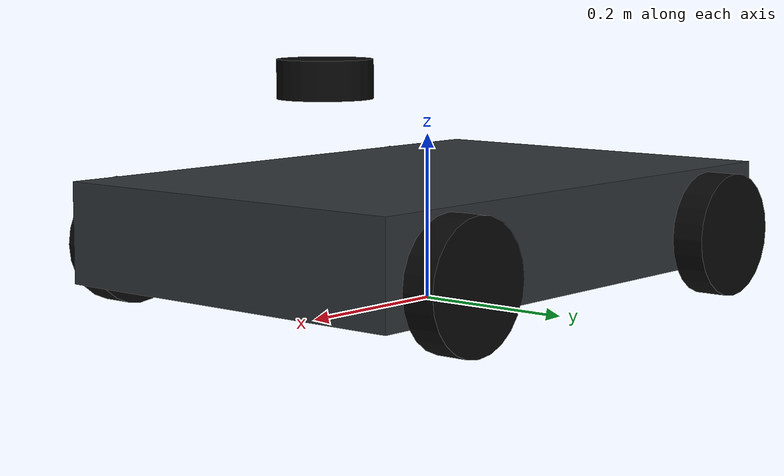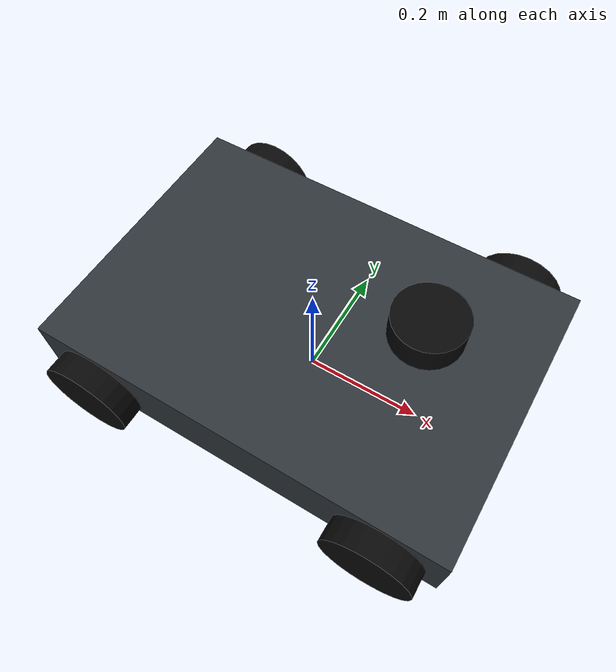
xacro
<?xml version="1.0"?>
<robot xmlns:xacro="http://www.ros.org/wiki/xacro" name="sih26112_amr">

  <!-- Canonical simulation dimensions. Freeze these with CAD before final hardware. -->
  <xacro:property name="base_length" value="0.70"/>
  <xacro:property name="base_width" value="0.48"/>
  <xacro:property name="base_height" value="0.12"/>
  <xacro:property name="wheel_radius" value="0.075"/>
  <xacro:property name="wheel_width" value="0.040"/>
  <xacro:property name="wheelbase" value="0.50"/>
  <xacro:property name="track_width" value="0.52"/>
  <xacro:property name="base_mass" value="18.0"/>
  <xacro:property name="wheel_mass" value="1.0"/>

  <material name="dark_grey"><color rgba="0.18 0.20 0.22 1.0"/></material>
  <material name="sensor_black"><color rgba="0.03 0.03 0.03 1.0"/></material>

  <link name="base_footprint"/>

  <link name="base_link">
    <visual>
      <geometry><box size="${base_length} ${base_width} ${base_height}"/></geometry>
      <material name="dark_grey"/>
    </visual>
    <collision><geometry><box size="${base_length} ${base_width} ${base_height}"/></geometry></collision>
    <inertial>
      <mass value="${base_mass}"/>
      <inertia ixx="${base_mass * (base_width*base_width + base_height*base_height) / 12.0}" ixy="0" ixz="0" iyy="${base_mass * (base_length*base_length + base_height*base_height) / 12.0}" iyz="0" izz="${base_mass * (base_length*base_length + base_width*base_width) / 12.0}"/>
    </inertial>
  </link>

  <joint name="base_footprint_joint" type="fixed">
    <parent link="base_footprint"/>
    <child link="base_link"/>
    <origin xyz="0 0 ${wheel_radius + 0.02}" rpy="0 0 0"/>
  </joint>

  <xacro:macro name="wheel" params="name x y">
    <link name="${name}_link">
      <visual>
        <origin rpy="${pi/2} 0 0"/>
        <geometry><cylinder radius="${wheel_radius}" length="${wheel_width}"/></geometry>
        <material name="sensor_black"/>
      </visual>
      <collision>
        <origin rpy="${pi/2} 0 0"/>
        <geometry><cylinder radius="${wheel_radius}" length="${wheel_width}"/></geometry>
      </collision>
      <inertial>
        <mass value="${wheel_mass}"/>
        <inertia ixx="${wheel_mass * (3*wheel_radius*wheel_radius + wheel_width*wheel_width) / 12.0}" ixy="0" ixz="0" iyy="${wheel_mass * wheel_radius*wheel_radius / 2.0}" iyz="0" izz="${wheel_mass * (3*wheel_radius*wheel_radius + wheel_width*wheel_width) / 12.0}"/>
      </inertial>
    </link>
    <joint name="${name}_joint" type="continuous">
      <parent link="base_link"/>
      <child link="${name}_link"/>
      <origin xyz="${x} ${y} -0.02"/>
      <axis xyz="0 1 0"/>
      <dynamics damping="0.05" friction="0.02"/>
    </joint>
  </xacro:macro>

  <xacro:wheel name="front_left_wheel" x="${wheelbase/2.0}" y="${track_width/2.0}"/>
  <xacro:wheel name="rear_left_wheel" x="${-wheelbase/2.0}" y="${track_width/2.0}"/>
  <xacro:wheel name="front_right_wheel" x="${wheelbase/2.0}" y="${-track_width/2.0}"/>
  <xacro:wheel name="rear_right_wheel" x="${-wheelbase/2.0}" y="${-track_width/2.0}"/>

  <link name="lidar_link">
    <visual><geometry><cylinder radius="0.055" length="0.045"/></geometry><material name="sensor_black"/></visual>
    <collision><geometry><cylinder radius="0.055" length="0.045"/></geometry></collision>
    <inertial><mass value="0.25"/><inertia ixx="0.0002" ixy="0" ixz="0" iyy="0.0002" iyz="0" izz="0.0003"/></inertial>
  </link>
  <joint name="lidar_joint" type="fixed">
    <parent link="base_link"/>
    <child link="lidar_link"/>
    <origin xyz="0.18 0 0.18"/>
  </joint>

  <gazebo reference="front_left_wheel_link"><mu1>1.0</mu1><mu2>1.0</mu2></gazebo>
  <gazebo reference="rear_left_wheel_link"><mu1>1.0</mu1><mu2>1.0</mu2></gazebo>
  <gazebo reference="front_right_wheel_link"><mu1>1.0</mu1><mu2>1.0</mu2></gazebo>
  <gazebo reference="rear_right_wheel_link"><mu1>1.0</mu1><mu2>1.0</mu2></gazebo>

  <gazebo reference="lidar_link">
    <sensor name="lidar" type="gpu_lidar">
      <topic>/scan</topic>
      <gz_frame_id>lidar_link</gz_frame_id>
      <update_rate>15</update_rate>
      <always_on>true</always_on>
      <visualize>true</visualize>
      <lidar>
        <scan><horizontal><samples>720</samples><resolution>1</resolution><min_angle>-3.14159265</min_angle><max_angle>3.14159265</max_angle></horizontal></scan>
        <range><min>0.12</min><max>12.0</max><resolution>0.01</resolution></range>
      </lidar>
    </sensor>
  </gazebo>

  <gazebo>
    <plugin filename="gz-sim-diff-drive-system" name="gz::sim::systems::DiffDrive">
      <left_joint>front_left_wheel_joint</left_joint>
      <left_joint>rear_left_wheel_joint</left_joint>
      <right_joint>front_right_wheel_joint</right_joint>
      <right_joint>rear_right_wheel_joint</right_joint>
      <wheel_separation>${track_width}</wheel_separation>
      <wheel_radius>${wheel_radius}</wheel_radius>
      <topic>/cmd_vel</topic>
      <odom_topic>/odom</odom_topic>
      <tf_topic>/tf</tf_topic>
      <frame_id>odom</frame_id>
      <child_frame_id>base_footprint</child_frame_id>
      <odom_publish_frequency>50</odom_publish_frequency>
      <max_linear_velocity>0.8</max_linear_velocity>
      <max_angular_velocity>1.5</max_angular_velocity>
      <max_linear_acceleration>0.7</max_linear_acceleration>
      <max_angular_acceleration>2.0</max_angular_acceleration>
    </plugin>
    <plugin filename="gz-sim-joint-state-publisher-system" name="gz::sim::systems::JointStatePublisher">
      <topic>/joint_states</topic>
    </plugin>
  </gazebo>
</robot>
